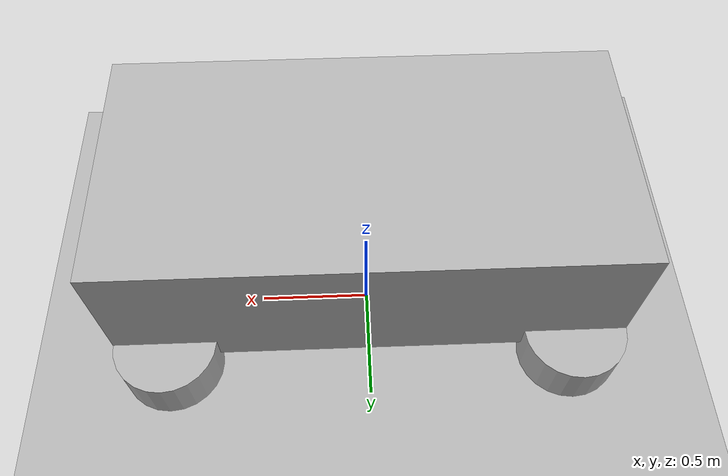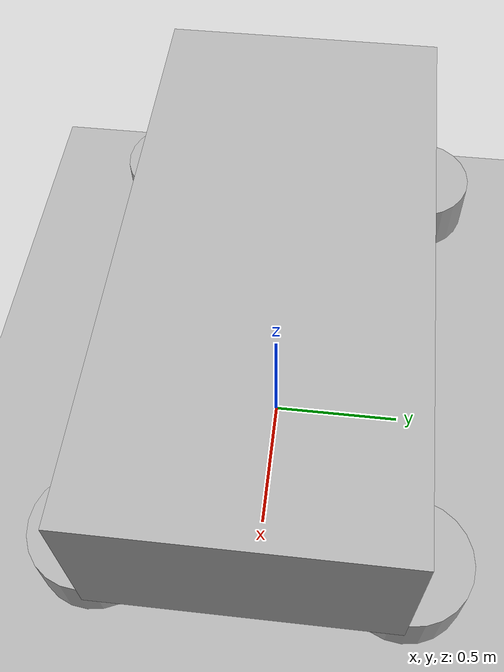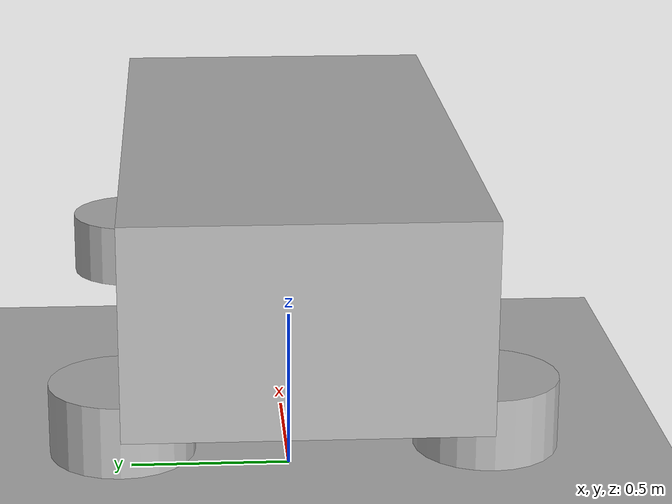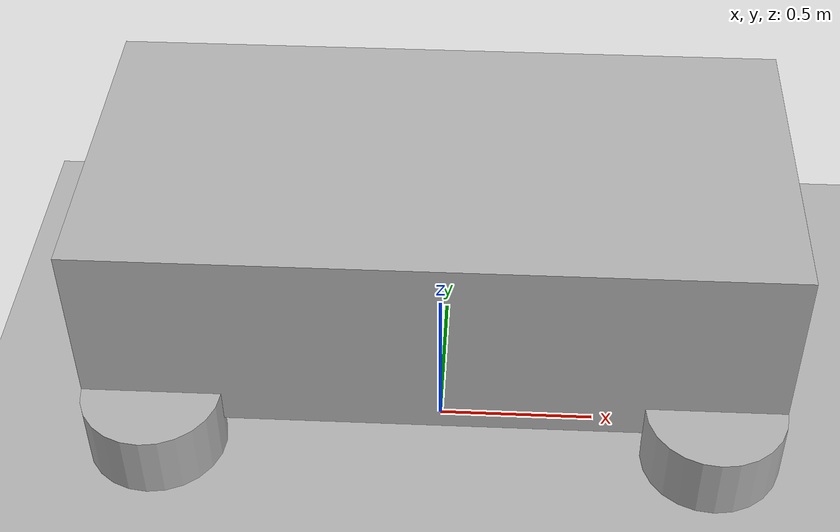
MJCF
<?xml version="1.0" ?>
<mujoco>
  <compiler angle="radian" coordinate="local" inertiafromgeom="true"/>
  <option timestep="0.001" iterations="50" tolerance="1e-10" cone="elliptic"/>

  <default>
    <joint armature="0.1" damping="0.1" limited="true"/>
    <geom contype="1" conaffinity="1" condim="3" friction="1.0 0.5 0.5" rgba="0.7 0.7 0.7 1"/>
  </default>

  <asset>
    <texture type="skybox" builtin="gradient" rgb1="0.3 0.5 0.7" rgb2="0 0 0" width="512" height="512"/>
    <texture name="grid" type="2d" builtin="checker" rgb1=".1 .2 .3" rgb2=".2 .3 .4" width="512" height="512"/>
    <material name="grid" texture="grid" texrepeat="1 1" texuniform="true" reflectance=".2"/>
    <material name="body" rgba=".7 .5 .3 1"/>
    <material name="wheel" rgba=".1 .1 .1 1"/>
  </asset>

  <worldbody>
    <light directional="true" diffuse=".8 .8 .8" specular=".2 .2 .2" pos="0 0 5" dir="0 0 -1"/>
    <geom name="ground" type="plane" size="100 100 0.1" material="grid" pos="0 0 0"/>

    <body name="car" pos="0 0 0.5">
      <!-- 车身 -->
      <joint name="car_joint" type="free"/>
      <geom name="body" type="box" size="1.0 0.5 0.3" material="body" pos="0 0 0.3"/>

      <!-- 前轮 -->
      <body name="front_left_wheel" pos="0.8 0.5 0">
        <joint name="front_left_steer" type="hinge" axis="0 0 1" range="-0.5 0.5"/>
        <joint name="front_left_drive" type="hinge" axis="0 1 0" range="-10000.0 10000.0"/>
        <geom name="front_left_wheel" type="cylinder" size="0.2 0.1" material="wheel"/>
      </body>

      <body name="front_right_wheel" pos="0.8 -0.5 0">
        <joint name="front_right_steer" type="hinge" axis="0 0 1" range="-0.5 0.5"/>
        <joint name="front_right_drive" type="hinge" axis="0 1 0" range="-10000.0 10000.0"/>
        <geom name="front_right_wheel" type="cylinder" size="0.2 0.1" material="wheel"/>
      </body>

      <!-- 后轮 -->
      <body name="rear_left_wheel" pos="-0.8 0.5 0">
        <joint name="rear_left_drive" type="hinge" axis="0 1 0" range="-10000.0 10000.0"/>
        <geom name="rear_left_wheel" type="cylinder" size="0.2 0.1" material="wheel"/>
      </body>

      <body name="rear_right_wheel" pos="-0.8 -0.5 0">
        <joint name="rear_right_drive" type="hinge" axis="0 1 0" range="-10000.0 10000.0"/>
        <geom name="rear_right_wheel" type="cylinder" size="0.2 0.1" material="wheel"/>
      </body>
    </body>
  </worldbody>

  <actuator>
    <!-- 转向控制 -->
    <motor name="steering_left" joint="front_left_steer" gear="1"/>
    <motor name="steering_right" joint="front_right_steer" gear="1"/>

    <!-- 驱动控制 -->
    <motor name="throttle_left" joint="rear_left_drive" gear="100"/>
    <motor name="throttle_right" joint="rear_right_drive" gear="100"/>
  </actuator>
</mujoco>
